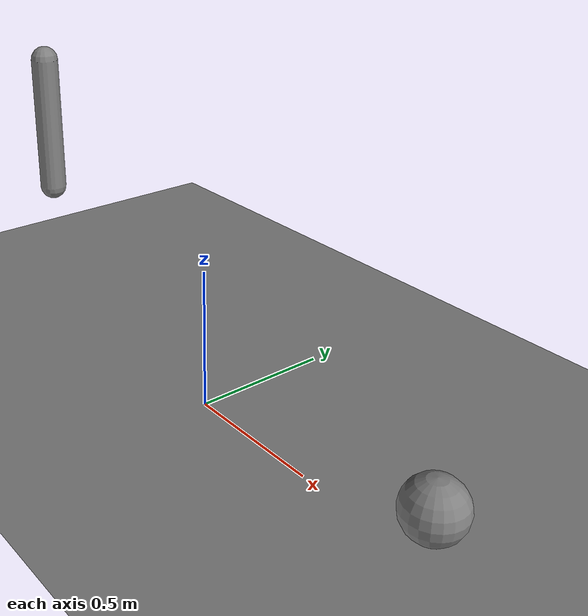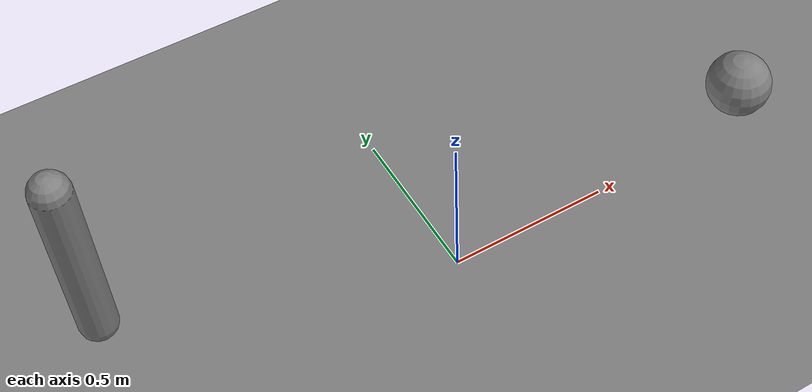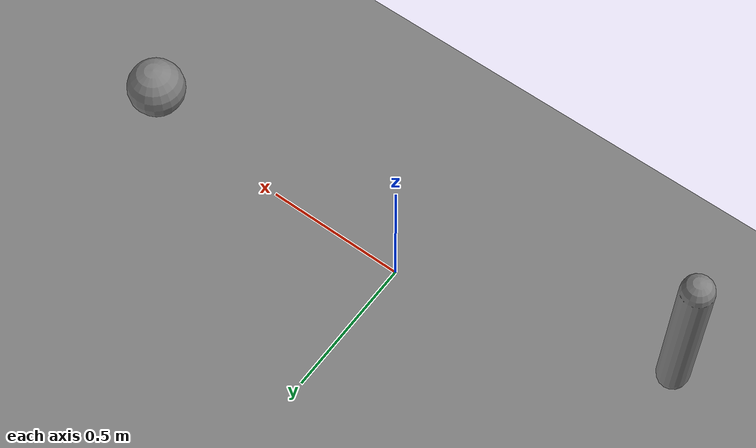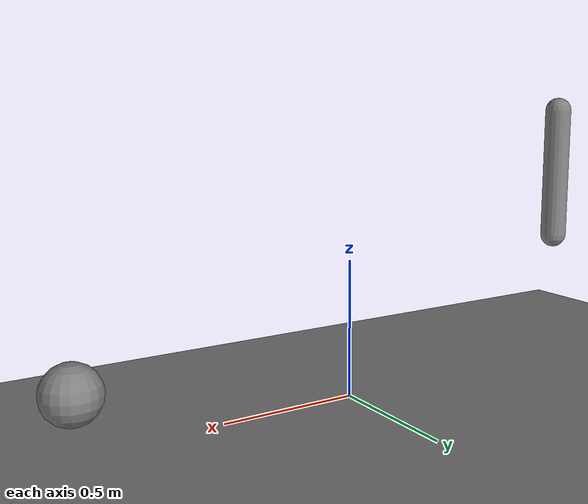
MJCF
<mujoco model="actuated_sleep">
        <option gravity="0 0 -9.81" timestep="0.002">
            <flag sleep="enable"/>
        </option>
        <worldbody>
            <geom type="plane" size="5 5 0.1"/>
            <body name="actuated_arm" pos="-1 0 1">
                <joint name="shoulder" type="hinge" axis="0 1 0"/>
                <geom type="capsule" size="0.05" fromto="0 0 0 0 0 -0.5" mass="1.0"/>
            </body>
            <body name="passive_ball" pos="1 0 0.2">
                <freejoint name="passive_free"/>
                <geom type="sphere" size="0.1" mass="1.0"/>
            </body>
        </worldbody>
        <actuator>
            <motor joint="shoulder" gear="1"/>
        </actuator>
    </mujoco>
